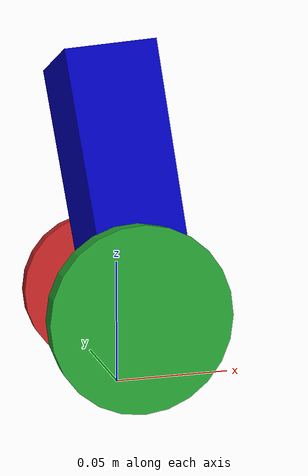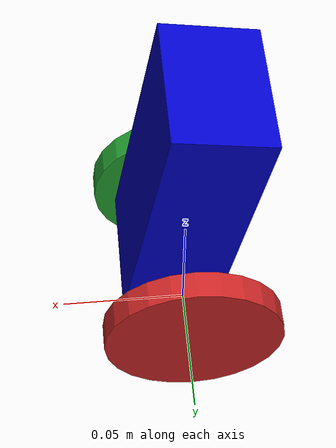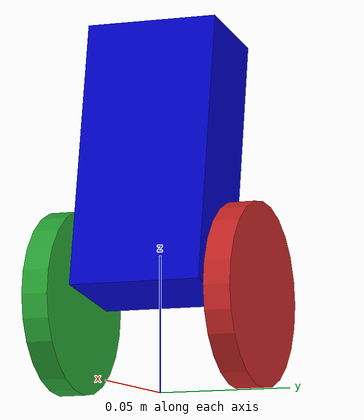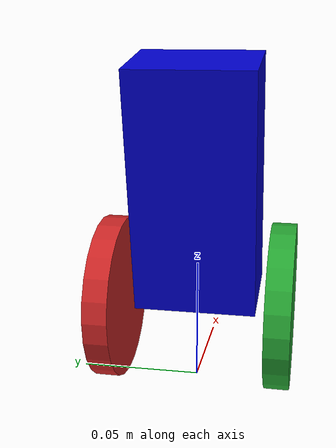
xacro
<?xml version="1.0"?>
<robot xmlns:xacro="http://www.ros.org/wiki/xacro" name="clk_edumip">

<xacro:property name="wheel_separation" value="0.070"/>
<xacro:property name="wheel_radius" value="0.034" />
<xacro:property name="wheel_width" value="0.010" />
<xacro:property name="body_height" value="0.1" />
<xacro:property name="body_width" value="0.050" />
<xacro:property name="body_length" value="0.035" />

  <material name="blue">
    <color rgba="0 0 0.8 1"/>
  </material>

  <material name="white">
    <color rgba="1 1 1 1"/>
  </material>

<xacro:macro name="wheel" params="postfix reflect">
   <link name="wheel${postfix}">
     <visual>
         <origin xyz="0 0 0" rpy="0 0 0" />
         <geometry>
            <cylinder length="${wheel_width}" radius="${wheel_radius}"/>
         </geometry>
      </visual>
      <collision>
	 <origin xyz="0 0 0" rpy="0 0 0" />
         <geometry>
            <cylinder length="${wheel_width}" radius="${wheel_radius}"/>
         </geometry>
      </collision>
      <inertial>
        <origin xyz="0 0 0" rpy="0 0 0" />
	<mass value="0.05"/>
	<inertia ixx="0.01" ixy="0.0" ixz="0.0" iyy="0.01" iyz="0.0" izz="0.01"/>
      </inertial>
   </link>
</xacro:macro>

<xacro:macro name="wheel_joint" params="postfix reflect">
   <joint name="joint${postfix}" type="continuous">
       <parent link="edumip_body"/>
       <child link="wheel${postfix}"/>
       <origin xyz="0 ${reflect*wheel_separation/2} ${wheel_radius}" rpy="${3.1459/2} 0 0" />
       <axis xyz="0 0 1" />
   </joint>
</xacro:macro>

<link name="edumip_body">
  <visual>
      <origin xyz="0 0 ${body_height/2+wheel_radius}" rpy="0 -0.17 0" />
      <geometry>
        <box size="${body_length} ${body_width} ${body_height}"/>
      </geometry>
      <material name="blue"/>
   </visual>
   <collision>
      <geometry>
         <box size="${body_length} ${body_width} ${body_height}"/>
      </geometry>
      <origin xyz="0 0 ${body_height/2+wheel_radius}" rpy="0 -0.17 0" />
   </collision>
   <inertial>
     <origin xyz="0 0 -1" rpy="0 -0.17 0" />
     <mass value="0.5"/>
     <inertia ixx="0.01" ixy="0.0" ixz="0.0" iyy="0.01" iyz="0.0" izz="0.01"/>
   </inertial>

</link>

<xacro:wheel postfix="L" reflect="1" />
<xacro:wheel postfix="R" reflect="-1" />

<xacro:wheel_joint postfix="L" reflect="1" />
<xacro:wheel_joint postfix="R" reflect="-1" />

 <gazebo reference="edumip_body">
   <material>Gazebo/Blue</material>
   <mu1>0.2</mu1>
   <mu2>0.2</mu2>
 </gazebo>
 <gazebo reference="wheelR">
   <material>Gazebo/Green</material>
   <mu1>0.2</mu1>
   <mu2>0.2</mu2>
 </gazebo>
 <gazebo reference="wheelL">
   <material>Gazebo/Red</material>
   <mu1>0.2</mu1>
   <mu2>0.2</mu2>
 </gazebo>

</robot>
